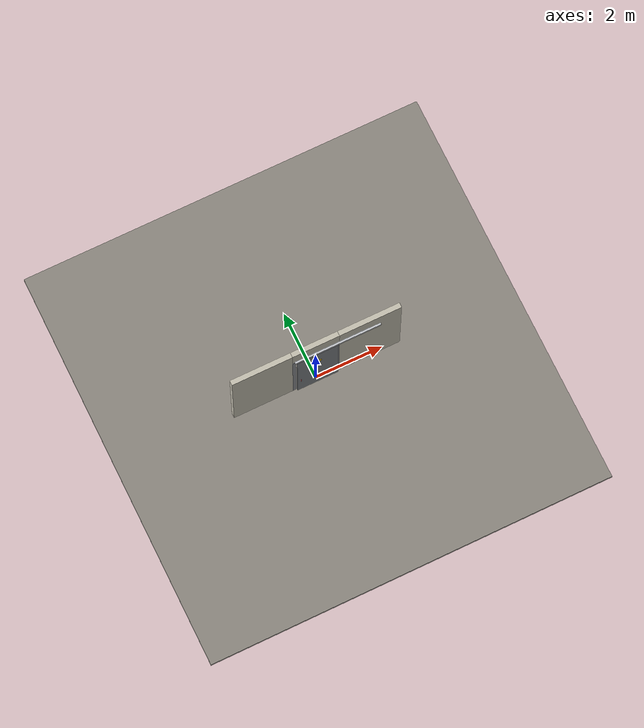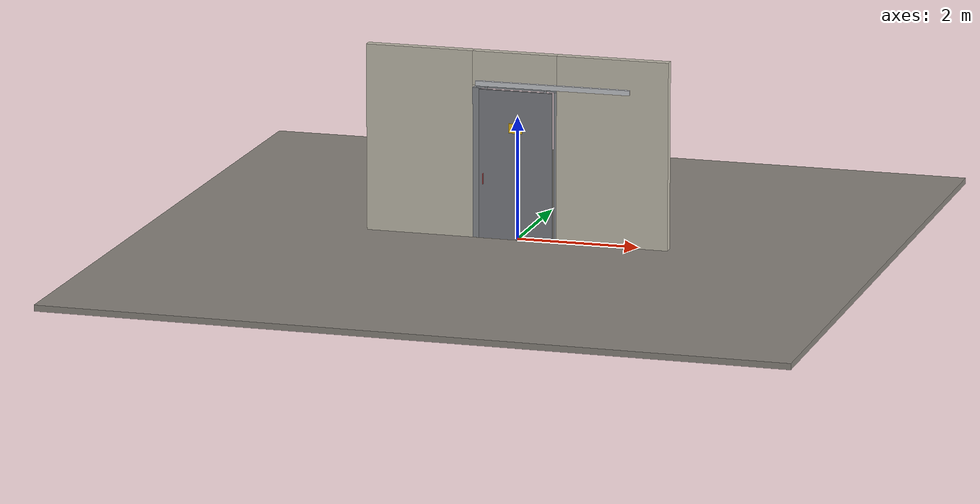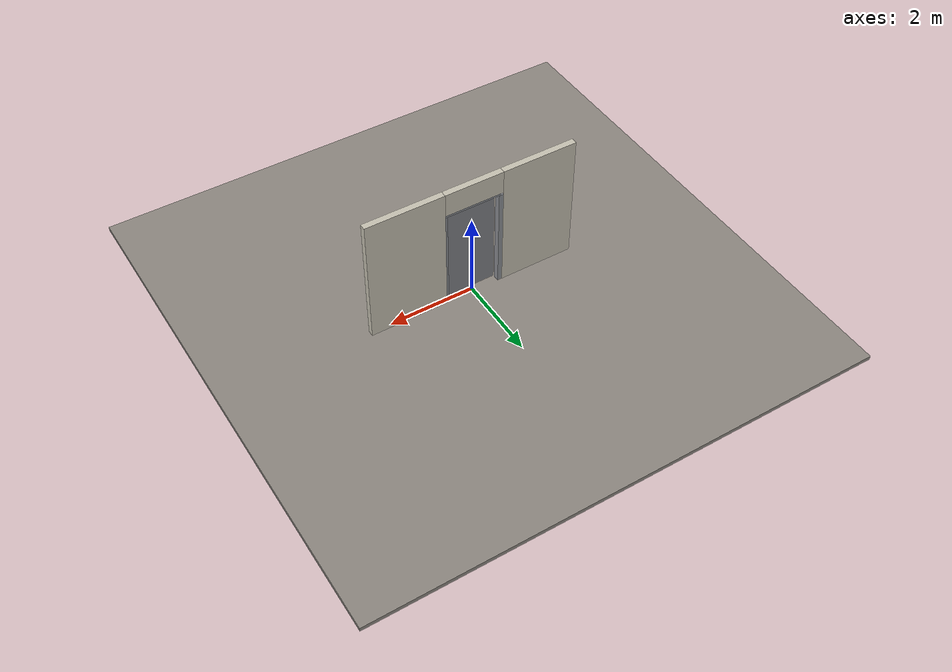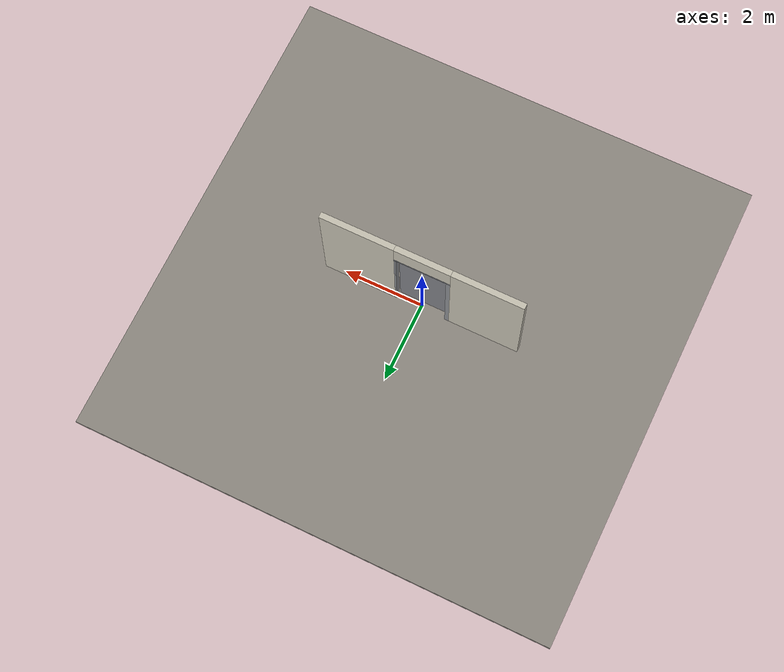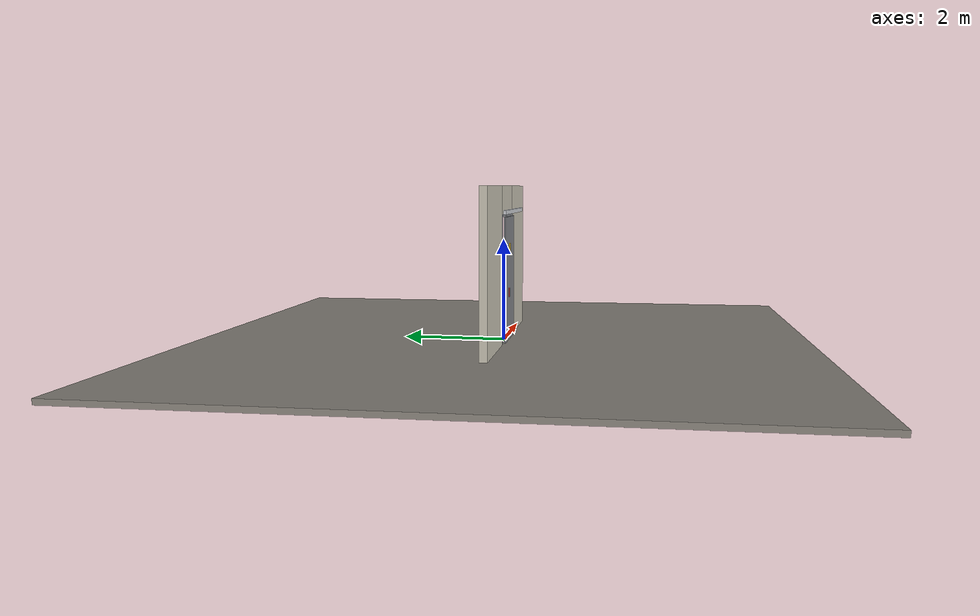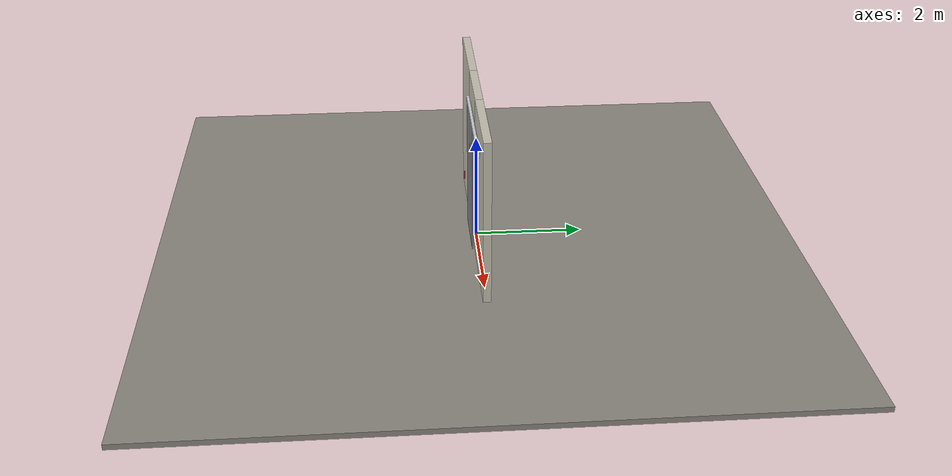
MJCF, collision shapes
<?xml version="1.0" ?>
<mujoco model="db0453_sliding_single_full">
  <compiler angle="radian" meshdir="../../hardware" texturedir="../../textures" autolimits="true" inertiafromgeom="false"/>
  <option timestep="0.002" integrator="implicitfast" cone="elliptic" impratio="10" noslip_iterations="3">
    <flag multiccd="enable"/>
  </option>
  <size memory="16M"/>
  <default>
    <geom condim="4" solref="0.005 1" solimp="0.95 0.99 0.001"/>
    <joint solreflimit="0.005 1" solimplimit="0.95 0.99 0.001"/>
    <tendon solreflimit="0.005 1"/>
    <equality solref="0.002 1"/>
  </default>
  <visual>
    <headlight ambient="0.4 0.4 0.4" diffuse="0.7 0.7 0.7" specular="0.2 0.2 0.2"/>
    <quality shadowsize="4096"/>
    <map znear="0.01" zfar="60"/>
  </visual>
  <asset>
    <mesh name="pull_1e5d69a91a" file="pull_1e5d69a91a.obj"/>
    <material name="mat_floor" rgba="0.55 0.53 0.5 1" specular="0.2" shininess="0.15" reflectance="0"/>
    <material name="mat_wall" rgba="0.78 0.76 0.7 1" specular="0.2" shininess="0.1" reflectance="0"/>
    <material name="mat_frame" rgba="0.55 0.56 0.58 1" specular="0.8" shininess="0.55" reflectance="0.4"/>
    <material name="mat_track" rgba="0.8 0.81 0.83 1" specular="0.8" shininess="0.6" reflectance="0.4"/>
    <material name="mat_leaf" rgba="0.5 0.51 0.53 1" specular="0.23" shininess="0.47" reflectance="0.02"/>
    <material name="mat_roller" rgba="0.65 0.66 0.68 1" specular="0.74" shininess="0.5" reflectance="0.36"/>
    <material name="mat_op_stainless" rgba="0.75 0.76 0.77 1" specular="0.8" shininess="0.65" reflectance="0.4"/>
    <material name="mat_hook" rgba="0.75 0.76 0.77 1" specular="0.8" shininess="0.65" reflectance="0.4"/>
    <material name="mat_placard" rgba="0.95 0.75 0.05 1" specular="0.2" shininess="0.5" reflectance="0"/>
    <texture name="skybox" type="skybox" builtin="gradient" rgb1="0.6 0.7 0.85" rgb2="0.9 0.92 0.95" width="256" height="256"/>
  </asset>
  <worldbody>
    <light name="sun" pos="1.5 -2.5 4" dir="-0.3 0.5 -0.8" directional="true" diffuse="0.8 0.8 0.8" specular="0.3 0.3 0.3" castshadow="true"/>
    <light name="fill" pos="-1.5 2.5 3" dir="0.3 -0.5 -0.7" directional="true" diffuse="0.35 0.35 0.4" castshadow="false"/>
    <camera name="robot_view" pos="0 -2.929375 2.049225" xyaxes="1 0 0 0 0.26963 0.962964" fovy="52"/>
    <camera name="far_view" pos="0 2.929375 2.049225" xyaxes="-1 0 0 0 -0.26963 0.962964" fovy="52"/>
    <camera name="iso" pos="2.226325 -2.460675 2.517925" xyaxes="0.741536 0.670913 0 -0.242917 0.268487 0.932151" fovy="46"/>
    <camera name="detail_handle" pos="-0.3395 -0.9825 1.28" xyaxes="0.97561 0.219512 0 -0.070934 0.315262 0.94635" fovy="38"/>
    <geom name="floor" type="box" size="6 6 0.05" pos="0 0 -0.05" material="mat_floor" group="0" contype="1" conaffinity="1" friction="0.8 0.005 0.0001" density="2400"/>
    <geom name="wall_left" type="box" size="0.88775 0.0725 1.529" pos="-1.61225 0 1.529" material="mat_wall" group="0" contype="1" conaffinity="1" friction="0.6 0.005 0.0001" density="800"/>
    <geom name="wall_right" type="box" size="0.91775 0.0725 1.529" pos="1.58225 0 1.529" material="mat_wall" group="0" contype="1" conaffinity="1" friction="0.6 0.005 0.0001" density="800"/>
    <geom name="wall_header" type="box" size="0.6945 0.0725 0.2775" pos="-0.03 0 2.7805" material="mat_wall" group="0" contype="1" conaffinity="1" friction="0.6 0.005 0.0001" density="800"/>
    <geom name="jamb_r" type="box" size="0.0225 0.0725 1.229" pos="0.642 0 1.229" material="mat_frame" group="0" contype="1" conaffinity="1" friction="0.6 0.005 0.0001" density="300"/>
    <geom name="jamb_head" type="box" size="0.6645 0.0725 0.0225" pos="0 0 2.4805" material="mat_frame" group="0" contype="1" conaffinity="1" friction="0.6 0.005 0.0001" density="300"/>
    <geom name="track_header" type="box" size="1.269 0.025 0.04" pos="0.6095 -0.1075 2.543" material="mat_track" group="0" contype="1" conaffinity="1" friction="0.6 0.005 0.0001" density="2700"/>
    <geom name="jamb_latch_0" type="box" size="0.0525 0.0725 1.229" pos="-0.672 0 1.229" material="mat_frame" group="0" contype="1" conaffinity="1" friction="0.6 0.005 0.0001" density="300"/>
    <geom name="track_header_bracket" type="box" size="1.0152 0.0055 0.032" pos="0.6095 -0.0775 2.543" material="mat_hook" group="1" contype="0" conaffinity="0" density="7850"/>
    <site name="approach_point" pos="0 -1.5 0" quat="1 0 0 0" size="0.05" rgba="0.2 0.9 0.2 0.5" group="4"/>
    <site name="goal_point" pos="0 1.5 0" quat="1 0 0 0" size="0.05" rgba="0.2 0.9 0.2 0.5" group="4"/>
    <site name="door_plane_center" pos="0 0 1.229" quat="1 0 0 0" size="0.02" rgba="0.2 0.9 0.2 0.5" group="4"/>
    <body name="leaf" pos="0 -0.1075 0">
      <inertial pos="-0.002607 -0.00034 1.241221" mass="92.066083" quat="0.50072 -0.500116 -0.499955 -0.499209" diaginertia="11.562984881 46.207812137 57.75289224"/>
      <joint name="leaf_slide" type="slide" axis="1 0 0" limited="true" range="0 1.219" damping="6.603304" frictionloss="70.423069" armature="0.5"/>
      <geom name="leaf_slab" type="box" size="0.6095 0.015 1.219" pos="0 0 1.231" material="mat_leaf" group="0" contype="1" conaffinity="1" friction="0.35 0.005 0.0001" density="1"/>
      <geom name="leaf_carrier_0" type="box" size="0.02 0.005 0.0545" pos="-0.4895 0 2.4445" material="mat_roller" group="1" contype="0" conaffinity="0" density="7850"/>
      <geom name="leaf_carrier_wheel_0" type="cylinder" size="0.014 0.006" pos="-0.4895 0 2.489" quat="0.707107 -0.707107 0 0" material="mat_roller" group="1" contype="0" conaffinity="0" density="7850"/>
      <geom name="leaf_carrier_1" type="box" size="0.02 0.005 0.0545" pos="0.4895 0 2.4445" material="mat_roller" group="1" contype="0" conaffinity="0" density="7850"/>
      <geom name="leaf_carrier_wheel_1" type="cylinder" size="0.014 0.006" pos="0.4895 0 2.489" quat="0.707107 -0.707107 0 0" material="mat_roller" group="1" contype="0" conaffinity="0" density="7850"/>
      <geom name="leaf_pull_n" type="mesh" mesh="pull_1e5d69a91a" pos="-0.5195 -0.015 1" quat="0 0 -0.707107 0.707107" material="mat_op_stainless" group="1" contype="0" conaffinity="0" density="3000"/>
      <geom name="leaf_pull_col_n" type="capsule" size="0.0095 0.08" pos="-0.5195 -0.075 1" material="mat_op_stainless" group="3" contype="1" conaffinity="1" rgba="0.8 0.3 0.3 0.25" friction="0.7 0.01 0.0001" density="3000"/>
      <geom name="warning_placard" type="box" size="0.11 0.001 0.08" pos="0 -0.016 1.8405" material="mat_placard" group="2" contype="0" conaffinity="0" density="1000"/>
      <site name="leaf_pull_grip_n" pos="-0.5195 -0.075 1" quat="1 0 0 0" size="0.012" rgba="0.2 0.9 0.2 0.5" group="4"/>
      <site name="leaf_edge_mid" pos="-0.6095 0 1.231" quat="1 0 0 0" size="0.02" rgba="0.2 0.9 0.2 0.5" group="4"/>
    </body>
  </worldbody>
  <sensor>
    <jointpos name="leaf_slide_pos" joint="leaf_slide"/>
    <jointvel name="leaf_slide_vel" joint="leaf_slide"/>
  </sensor>
</mujoco>
